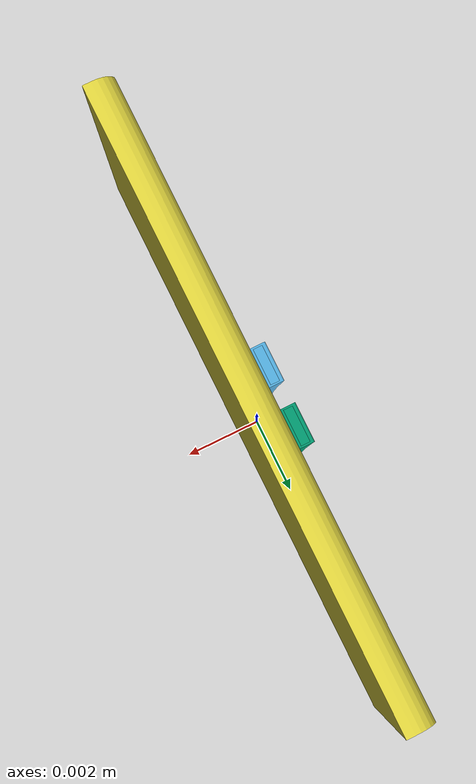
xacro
<robot name="partnet_56b0a9a5-1a2a-4c3e-95a7-e9f85b6786c6" xmlns:xacro="http://wiki.ros.org/xacro">
	<xacro:property name="scale" value="100" /><link name="base" />
	<link name="link_0">
		<visual name="switch-1">
			<origin xyz="${0 / scale} ${-0.2519695 / scale} ${-0.04 / scale}" />
			<geometry>
				<mesh filename="package://switch_description/urdf/100900/textured_objs/original-21.obj" scale="${1 / scale} ${1 / scale} ${1 / scale}" />
			</geometry>
		</visual>
		<visual name="switch-1">
			<origin xyz="${0 / scale} ${-0.2519695 / scale} ${-0.04 / scale}" />
			<geometry>
				<mesh filename="package://switch_description/urdf/100900/textured_objs/original-24.obj" scale="${1 / scale} ${1 / scale} ${1 / scale}" />
			</geometry>
		</visual>
		<collision>
			<origin xyz="${0 / scale} ${-0.2519695 / scale} ${-0.04 / scale}" />
			<geometry>
				<mesh filename="package://switch_description/urdf/100900/textured_objs/original-21.obj" scale="${1 / scale} ${1 / scale} ${1 / scale}" />
			</geometry>
		</collision>
		<collision>
			<origin xyz="${0 / scale} ${-0.2519695 / scale} ${-0.04 / scale}" />
			<geometry>
				<mesh filename="package://switch_description/urdf/100900/textured_objs/original-24.obj" scale="${1 / scale} ${1 / scale} ${1 / scale}" />
			</geometry>
		</collision>
	</link>
	<joint name="joint_0" type="revolute">
		<origin xyz="${0 / scale} ${0.2519695 / scale} ${0.04 / scale}" />
		<axis xyz="-1 0 0" />
		<child link="link_0" />
		<parent link="link_2" />
		<limit lower="-0.0" upper="0.296705972839036" effort="10.0" velocity="0.1" />
	</joint>
	<link name="link_1">
		<visual name="switch-2">
			<origin xyz="${0 / scale} ${-0.2519695 / scale} ${-0.04 / scale}" />
			<geometry>
				<mesh filename="package://switch_description/urdf/100900/textured_objs/original-23.obj" scale="${1 / scale} ${1 / scale} ${1 / scale}" />
			</geometry>
		</visual>
		<visual name="switch-2">
			<origin xyz="${0 / scale} ${-0.2519695 / scale} ${-0.04 / scale}" />
			<geometry>
				<mesh filename="package://switch_description/urdf/100900/textured_objs/original-22.obj" scale="${1 / scale} ${1 / scale} ${1 / scale}" />
			</geometry>
		</visual>
		<collision>
			<origin xyz="${0 / scale} ${-0.2519695 / scale} ${-0.04 / scale}" />
			<geometry>
				<mesh filename="package://switch_description/urdf/100900/textured_objs/original-23.obj" scale="${1 / scale} ${1 / scale} ${1 / scale}" />
			</geometry>
		</collision>
		<collision>
			<origin xyz="${0 / scale} ${-0.2519695 / scale} ${-0.04 / scale}" />
			<geometry>
				<mesh filename="package://switch_description/urdf/100900/textured_objs/original-22.obj" scale="${1 / scale} ${1 / scale} ${1 / scale}" />
			</geometry>
		</collision>
	</link>
	<joint name="joint_1" type="revolute">
		<origin xyz="${0 / scale} ${0.2519695 / scale} ${0.04 / scale}" />
		<axis xyz="-1 0 0" />
		<child link="link_1" />
		<parent link="link_2" />
		<limit lower="-0.0" upper="0.296705972839036" effort="10.0" velocity="0.1" />
	</joint>
	<link name="link_2">
		<visual name="base_body-3">
			<origin xyz="${0 / scale} ${0 / scale} ${0 / scale}" />
			<geometry>
				<mesh filename="package://switch_description/urdf/100900/textured_objs/original-26.obj" scale="${1 / scale} ${1 / scale} ${1 / scale}" />
			</geometry>
		</visual>
		<visual name="base_body-3">
			<origin xyz="${0 / scale} ${0 / scale} ${0 / scale}" />
			<geometry>
				<mesh filename="package://switch_description/urdf/100900/textured_objs/original-4.obj" scale="${1 / scale} ${1 / scale} ${1 / scale}" />
			</geometry>
		</visual>
		<visual name="base_body-3">
			<origin xyz="${0 / scale} ${0 / scale} ${0 / scale}" />
			<geometry>
				<mesh filename="package://switch_description/urdf/100900/textured_objs/original-3.obj" scale="${1 / scale} ${1 / scale} ${1 / scale}" />
			</geometry>
		</visual>
		<visual name="base_body-3">
			<origin xyz="${0 / scale} ${0 / scale} ${0 / scale}" />
			<geometry>
				<mesh filename="package://switch_description/urdf/100900/textured_objs/original-2.obj" scale="${1 / scale} ${1 / scale} ${1 / scale}" />
			</geometry>
		</visual>
		<visual name="base_body-3">
			<origin xyz="${0 / scale} ${0 / scale} ${0 / scale}" />
			<geometry>
				<mesh filename="package://switch_description/urdf/100900/textured_objs/original-16.obj" scale="${1 / scale} ${1 / scale} ${1 / scale}" />
			</geometry>
		</visual>
		<visual name="base_body-3">
			<origin xyz="${0 / scale} ${0 / scale} ${0 / scale}" />
			<geometry>
				<mesh filename="package://switch_description/urdf/100900/textured_objs/original-8.obj" scale="${1 / scale} ${1 / scale} ${1 / scale}" />
			</geometry>
		</visual>
		<visual name="base_body-3">
			<origin xyz="${0 / scale} ${0 / scale} ${0 / scale}" />
			<geometry>
				<mesh filename="package://switch_description/urdf/100900/textured_objs/original-13.obj" scale="${1 / scale} ${1 / scale} ${1 / scale}" />
			</geometry>
		</visual>
		<visual name="base_body-3">
			<origin xyz="${0 / scale} ${0 / scale} ${0 / scale}" />
			<geometry>
				<mesh filename="package://switch_description/urdf/100900/textured_objs/original-9.obj" scale="${1 / scale} ${1 / scale} ${1 / scale}" />
			</geometry>
		</visual>
		<visual name="base_body-3">
			<origin xyz="${0 / scale} ${0 / scale} ${0 / scale}" />
			<geometry>
				<mesh filename="package://switch_description/urdf/100900/textured_objs/original-5.obj" scale="${1 / scale} ${1 / scale} ${1 / scale}" />
			</geometry>
		</visual>
		<visual name="base_body-3">
			<origin xyz="${0 / scale} ${0 / scale} ${0 / scale}" />
			<geometry>
				<mesh filename="package://switch_description/urdf/100900/textured_objs/original-6.obj" scale="${1 / scale} ${1 / scale} ${1 / scale}" />
			</geometry>
		</visual>
		<visual name="base_body-3">
			<origin xyz="${0 / scale} ${0 / scale} ${0 / scale}" />
			<geometry>
				<mesh filename="package://switch_description/urdf/100900/textured_objs/original-15.obj" scale="${1 / scale} ${1 / scale} ${1 / scale}" />
			</geometry>
		</visual>
		<visual name="base_body-3">
			<origin xyz="${0 / scale} ${0 / scale} ${0 / scale}" />
			<geometry>
				<mesh filename="package://switch_description/urdf/100900/textured_objs/original-11.obj" scale="${1 / scale} ${1 / scale} ${1 / scale}" />
			</geometry>
		</visual>
		<visual name="base_body-3">
			<origin xyz="${0 / scale} ${0 / scale} ${0 / scale}" />
			<geometry>
				<mesh filename="package://switch_description/urdf/100900/textured_objs/original-18.obj" scale="${1 / scale} ${1 / scale} ${1 / scale}" />
			</geometry>
		</visual>
		<visual name="base_body-3">
			<origin xyz="${0 / scale} ${0 / scale} ${0 / scale}" />
			<geometry>
				<mesh filename="package://switch_description/urdf/100900/textured_objs/original-25.obj" scale="${1 / scale} ${1 / scale} ${1 / scale}" />
			</geometry>
		</visual>
		<visual name="base_body-3">
			<origin xyz="${0 / scale} ${0 / scale} ${0 / scale}" />
			<geometry>
				<mesh filename="package://switch_description/urdf/100900/textured_objs/original-17.obj" scale="${1 / scale} ${1 / scale} ${1 / scale}" />
			</geometry>
		</visual>
		<visual name="base_body-3">
			<origin xyz="${0 / scale} ${0 / scale} ${0 / scale}" />
			<geometry>
				<mesh filename="package://switch_description/urdf/100900/textured_objs/original-12.obj" scale="${1 / scale} ${1 / scale} ${1 / scale}" />
			</geometry>
		</visual>
		<visual name="base_body-3">
			<origin xyz="${0 / scale} ${0 / scale} ${0 / scale}" />
			<geometry>
				<mesh filename="package://switch_description/urdf/100900/textured_objs/original-7.obj" scale="${1 / scale} ${1 / scale} ${1 / scale}" />
			</geometry>
		</visual>
		<visual name="base_body-3">
			<origin xyz="${0 / scale} ${0 / scale} ${0 / scale}" />
			<geometry>
				<mesh filename="package://switch_description/urdf/100900/textured_objs/original-1.obj" scale="${1 / scale} ${1 / scale} ${1 / scale}" />
			</geometry>
		</visual>
		<visual name="base_body-3">
			<origin xyz="${0 / scale} ${0 / scale} ${0 / scale}" />
			<geometry>
				<mesh filename="package://switch_description/urdf/100900/textured_objs/original-10.obj" scale="${1 / scale} ${1 / scale} ${1 / scale}" />
			</geometry>
		</visual>
		<visual name="base_body-3">
			<origin xyz="${0 / scale} ${0 / scale} ${0 / scale}" />
			<geometry>
				<mesh filename="package://switch_description/urdf/100900/textured_objs/original-14.obj" scale="${1 / scale} ${1 / scale} ${1 / scale}" />
			</geometry>
		</visual>
		<visual name="base_body-3">
			<origin xyz="${0 / scale} ${0 / scale} ${0 / scale}" />
			<geometry>
				<mesh filename="package://switch_description/urdf/100900/textured_objs/original-19.obj" scale="${1 / scale} ${1 / scale} ${1 / scale}" />
			</geometry>
		</visual>
		<collision>
			<origin xyz="${0 / scale} ${0 / scale} ${0 / scale}" />
			<geometry>
				<mesh filename="package://switch_description/urdf/100900/textured_objs/original-26.obj" scale="${1 / scale} ${1 / scale} ${1 / scale}" />
			</geometry>
		</collision>
		<collision>
			<origin xyz="${0 / scale} ${0 / scale} ${0 / scale}" />
			<geometry>
				<mesh filename="package://switch_description/urdf/100900/textured_objs/original-4.obj" scale="${1 / scale} ${1 / scale} ${1 / scale}" />
			</geometry>
		</collision>
		<collision>
			<origin xyz="${0 / scale} ${0 / scale} ${0 / scale}" />
			<geometry>
				<mesh filename="package://switch_description/urdf/100900/textured_objs/original-3.obj" scale="${1 / scale} ${1 / scale} ${1 / scale}" />
			</geometry>
		</collision>
		<collision>
			<origin xyz="${0 / scale} ${0 / scale} ${0 / scale}" />
			<geometry>
				<mesh filename="package://switch_description/urdf/100900/textured_objs/original-2.obj" scale="${1 / scale} ${1 / scale} ${1 / scale}" />
			</geometry>
		</collision>
		<collision>
			<origin xyz="${0 / scale} ${0 / scale} ${0 / scale}" />
			<geometry>
				<mesh filename="package://switch_description/urdf/100900/textured_objs/original-16.obj" scale="${1 / scale} ${1 / scale} ${1 / scale}" />
			</geometry>
		</collision>
		<collision>
			<origin xyz="${0 / scale} ${0 / scale} ${0 / scale}" />
			<geometry>
				<mesh filename="package://switch_description/urdf/100900/textured_objs/original-8.obj" scale="${1 / scale} ${1 / scale} ${1 / scale}" />
			</geometry>
		</collision>
		<collision>
			<origin xyz="${0 / scale} ${0 / scale} ${0 / scale}" />
			<geometry>
				<mesh filename="package://switch_description/urdf/100900/textured_objs/original-13.obj" scale="${1 / scale} ${1 / scale} ${1 / scale}" />
			</geometry>
		</collision>
		<collision>
			<origin xyz="${0 / scale} ${0 / scale} ${0 / scale}" />
			<geometry>
				<mesh filename="package://switch_description/urdf/100900/textured_objs/original-9.obj" scale="${1 / scale} ${1 / scale} ${1 / scale}" />
			</geometry>
		</collision>
		<collision>
			<origin xyz="${0 / scale} ${0 / scale} ${0 / scale}" />
			<geometry>
				<mesh filename="package://switch_description/urdf/100900/textured_objs/original-5.obj" scale="${1 / scale} ${1 / scale} ${1 / scale}" />
			</geometry>
		</collision>
		<collision>
			<origin xyz="${0 / scale} ${0 / scale} ${0 / scale}" />
			<geometry>
				<mesh filename="package://switch_description/urdf/100900/textured_objs/original-6.obj" scale="${1 / scale} ${1 / scale} ${1 / scale}" />
			</geometry>
		</collision>
		<collision>
			<origin xyz="${0 / scale} ${0 / scale} ${0 / scale}" />
			<geometry>
				<mesh filename="package://switch_description/urdf/100900/textured_objs/original-15.obj" scale="${1 / scale} ${1 / scale} ${1 / scale}" />
			</geometry>
		</collision>
		<collision>
			<origin xyz="${0 / scale} ${0 / scale} ${0 / scale}" />
			<geometry>
				<mesh filename="package://switch_description/urdf/100900/textured_objs/original-11.obj" scale="${1 / scale} ${1 / scale} ${1 / scale}" />
			</geometry>
		</collision>
		<collision>
			<origin xyz="${0 / scale} ${0 / scale} ${0 / scale}" />
			<geometry>
				<mesh filename="package://switch_description/urdf/100900/textured_objs/original-18.obj" scale="${1 / scale} ${1 / scale} ${1 / scale}" />
			</geometry>
		</collision>
		<collision>
			<origin xyz="${0 / scale} ${0 / scale} ${0 / scale}" />
			<geometry>
				<mesh filename="package://switch_description/urdf/100900/textured_objs/original-25.obj" scale="${1 / scale} ${1 / scale} ${1 / scale}" />
			</geometry>
		</collision>
		<collision>
			<origin xyz="${0 / scale} ${0 / scale} ${0 / scale}" />
			<geometry>
				<mesh filename="package://switch_description/urdf/100900/textured_objs/original-17.obj" scale="${1 / scale} ${1 / scale} ${1 / scale}" />
			</geometry>
		</collision>
		<collision>
			<origin xyz="${0 / scale} ${0 / scale} ${0 / scale}" />
			<geometry>
				<mesh filename="package://switch_description/urdf/100900/textured_objs/original-12.obj" scale="${1 / scale} ${1 / scale} ${1 / scale}" />
			</geometry>
		</collision>
		<collision>
			<origin xyz="${0 / scale} ${0 / scale} ${0 / scale}" />
			<geometry>
				<mesh filename="package://switch_description/urdf/100900/textured_objs/original-7.obj" scale="${1 / scale} ${1 / scale} ${1 / scale}" />
			</geometry>
		</collision>
		<collision>
			<origin xyz="${0 / scale} ${0 / scale} ${0 / scale}" />
			<geometry>
				<mesh filename="package://switch_description/urdf/100900/textured_objs/original-1.obj" scale="${1 / scale} ${1 / scale} ${1 / scale}" />
			</geometry>
		</collision>
		<collision>
			<origin xyz="${0 / scale} ${0 / scale} ${0 / scale}" />
			<geometry>
				<mesh filename="package://switch_description/urdf/100900/textured_objs/original-10.obj" scale="${1 / scale} ${1 / scale} ${1 / scale}" />
			</geometry>
		</collision>
		<collision>
			<origin xyz="${0 / scale} ${0 / scale} ${0 / scale}" />
			<geometry>
				<mesh filename="package://switch_description/urdf/100900/textured_objs/original-14.obj" scale="${1 / scale} ${1 / scale} ${1 / scale}" />
			</geometry>
		</collision>
		<collision>
			<origin xyz="${0 / scale} ${0 / scale} ${0 / scale}" />
			<geometry>
				<mesh filename="package://switch_description/urdf/100900/textured_objs/original-19.obj" scale="${1 / scale} ${1 / scale} ${1 / scale}" />
			</geometry>
		</collision>
	</link>
	<joint name="joint_2" type="fixed">
		<origin rpy="1.570796326794897 0 -1.570796326794897" xyz="${0 / scale} ${0 / scale} ${0 / scale}" />
		<child link="link_2" />
		<parent link="base" />
	</joint>
</robot>
